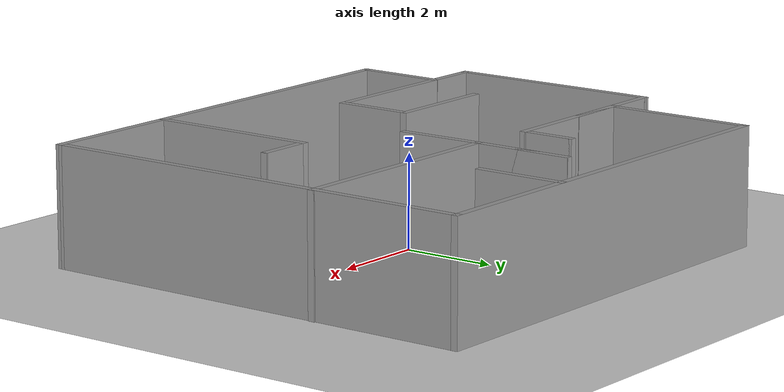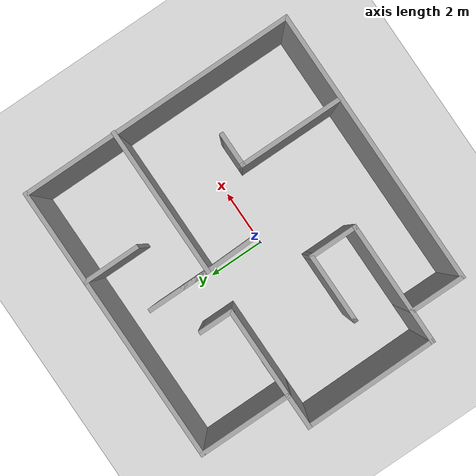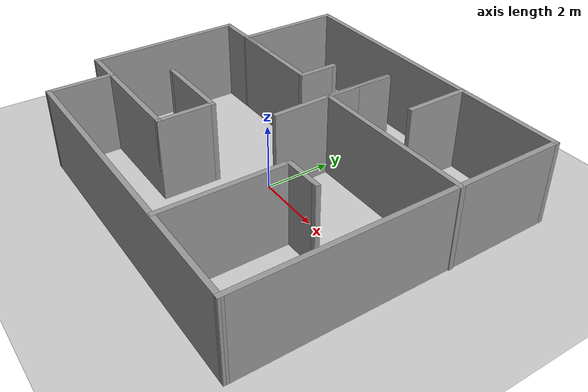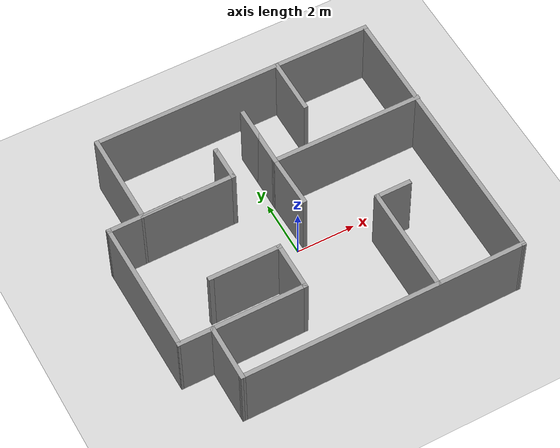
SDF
<sdf version="1.7">
 <world name="default">
  <light name="sun" type="directional">
   <pose>0 0 10 0 -0 0</pose>
   <diffuse>0.8 0.8 0.8 1</diffuse>
   <specular>0.2 0.2 0.2 1</specular>
   <attenuation>
    <range>1000</range>
    <constant>0.9</constant>
    <linear>0.01</linear>
    <quadratic>0.001</quadratic>
   </attenuation>
   <direction>-0.5 0.1 -0.9</direction>
   <spot><inner_angle>0</inner_angle><outer_angle>0</outer_angle><falloff>0</falloff></spot>
  </light>
  <model name="ground_plane">
   <static>1</static>
   <link name="link">
    <collision name="collision">
     <geometry><plane><normal>0 0 1</normal><size>100 100</size></plane></geometry>
     <surface>
      <contact><collide_bitmask>65535</collide_bitmask></contact>
      <friction><ode><mu>100</mu><mu2>50</mu2></ode></friction>
     </surface>
    </collision>
    <visual name="visual">
     <cast_shadows>0</cast_shadows>
     <geometry><plane><normal>0 0 1</normal><size>100 100</size></plane></geometry>
     <material>
      <script><uri>file://media/materials/scripts/gazebo.material</uri><name>Gazebo/Grey</name></script>
     </material>
    </visual>
   </link>
  </model>
  <gravity>0 0 -9.8</gravity>
  <magnetic_field>6e-06 2.3e-05 -4.2e-05</magnetic_field>
  <atmosphere type="adiabatic"/>
  <physics type="ode">
   <max_step_size>0.001</max_step_size>
   <real_time_factor>1</real_time_factor>
   <real_time_update_rate>1000</real_time_update_rate>
  </physics>
  <scene><ambient>0.4 0.4 0.4 1</ambient><background>0.7 0.7 0.7 1</background><shadows>1</shadows></scene>
  <spherical_coordinates>
   <surface_model>EARTH_WGS84</surface_model>
   <latitude_deg>0</latitude_deg>
   <longitude_deg>0</longitude_deg>
   <elevation>0</elevation>
   <heading_deg>0</heading_deg>
  </spherical_coordinates>
  <model name="wallss">
   <pose>-0.05802 0.334637 0 0 -0 0</pose>
   <link name="Wall_0">
    <collision name="Wall_0_Collision">
     <geometry><box><size>4.73188 0.15 2.5</size></box></geometry>
     <pose>0 0 1.25 0 -0 0</pose>
    </collision>
    <visual name="Wall_0_Visual">
     <pose>0 0 1.25 0 -0 0</pose>
     <geometry><box><size>4.73188 0.15 2.5</size></box></geometry>
     <material>
      <script><uri>file://media/materials/scripts/gazebo.material</uri><name>Gazebo/Grey</name></script>
      <ambient>1 1 1 1</ambient>
     </material>
     <meta><layer>0</layer></meta>
    </visual>
    <pose>-5.36203 -0.652776 0 0 -0 -1.56184</pose>
   </link>
   <link name="Wall_10">
    <collision name="Wall_10_Collision">
     <geometry><box><size>9.75 0.15 2.5</size></box></geometry>
     <pose>0 0 1.25 0 -0 0</pose>
    </collision>
    <visual name="Wall_10_Visual">
     <pose>0 0 1.25 0 -0 0</pose>
     <geometry><box><size>9.75 0.15 2.5</size></box></geometry>
     <material>
      <script><uri>file://media/materials/scripts/gazebo.material</uri><name>Gazebo/Grey</name></script>
      <ambient>1 1 1 1</ambient>
     </material>
     <meta><layer>0</layer></meta>
    </visual>
    <pose>0.556397 4.80896 0 0 -0 3.14159</pose>
   </link>
   <link name="Wall_12">
    <collision name="Wall_12_Collision">
     <geometry><box><size>1.4169 0.15 2.5</size></box></geometry>
     <pose>0 0 1.25 0 -0 0</pose>
    </collision>
    <visual name="Wall_12_Visual">
     <pose>0 0 1.25 0 -0 0</pose>
     <geometry><box><size>1.4169 0.15 2.5</size></box></geometry>
     <material>
      <script><uri>file://media/materials/scripts/gazebo.material</uri><name>Gazebo/Grey</name></script>
      <ambient>1 1 1 1</ambient>
     </material>
     <meta><layer>0</layer></meta>
    </visual>
    <pose>-3.6077 1.64665 0 0 -0 -3.13306</pose>
   </link>
   <link name="Wall_13">
    <collision name="Wall_13_Collision">
     <geometry><box><size>3.25 0.15 2.5</size></box></geometry>
     <pose>0 0 1.25 0 -0 0</pose>
    </collision>
    <visual name="Wall_13_Visual">
     <pose>0 0 1.25 0 -0 0</pose>
     <geometry><box><size>3.25 0.15 2.5</size></box></geometry>
     <material>
      <script><uri>file://media/materials/scripts/gazebo.material</uri><name>Gazebo/Grey</name></script>
      <ambient>1 1 1 1</ambient>
     </material>
     <meta><layer>0</layer></meta>
    </visual>
    <pose>-2.69113 1.64124 0 0 -0 0</pose>
   </link>
   <link name="Wall_14">
    <collision name="Wall_14_Collision">
     <geometry><box><size>1.25 0.15 2.5</size></box></geometry>
     <pose>0 0 1.25 0 -0 0</pose>
    </collision>
    <visual name="Wall_14_Visual">
     <pose>0 0 1.25 0 -0 0</pose>
     <geometry><box><size>1.25 0.15 2.5</size></box></geometry>
     <material>
      <script><uri>file://media/materials/scripts/gazebo.material</uri><name>Gazebo/Grey</name></script>
      <ambient>1 1 1 1</ambient>
     </material>
     <meta><layer>0</layer></meta>
    </visual>
    <pose>-1.14113 2.19124 0 0 -0 1.5708</pose>
   </link>
   <link name="Wall_15">
    <collision name="Wall_15_Collision">
     <geometry><box><size>0.15 0.15 2.5</size></box></geometry>
     <pose>0 0 1.25 0 -0 0</pose>
    </collision>
    <visual name="Wall_15_Visual">
     <pose>0 0 1.25 0 -0 0</pose>
     <geometry><box><size>0.15 0.15 2.5</size></box></geometry>
     <material>
      <script><uri>file://media/materials/scripts/gazebo.material</uri><name>Gazebo/Grey</name></script>
      <ambient>0 0 0 1</ambient>
     </material>
     <meta><layer>0</layer></meta>
    </visual>
    <pose>-1.14113 2.74124 0 0 -0 0</pose>
   </link>
   <link name="Wall_16">
    <collision name="Wall_16_Collision">
     <geometry><box><size>5.25 0.15 2.5</size></box></geometry>
     <pose>0 0 1.25 0 -0 0</pose>
    </collision>
    <visual name="Wall_16_Visual">
     <pose>0 0 1.25 0 -0 0</pose>
     <geometry><box><size>5.25 0.15 2.5</size></box></geometry>
     <material>
      <script><uri>file://media/materials/scripts/gazebo.material</uri><name>Gazebo/Grey</name></script>
      <ambient>1 1 1 1</ambient>
     </material>
     <meta><layer>0</layer></meta>
    </visual>
    <pose>2.83322 1.53175 0 0 -0 0</pose>
   </link>
   <link name="Wall_18">
    <collision name="Wall_18_Collision">
     <geometry><box><size>2 0.15 2.5</size></box></geometry>
     <pose>0 0 1.25 0 -0 0</pose>
    </collision>
    <visual name="Wall_18_Visual">
     <pose>0 0 1.25 0 -0 0</pose>
     <geometry><box><size>2 0.15 2.5</size></box></geometry>
     <material>
      <script><uri>file://media/materials/scripts/gazebo.material</uri><name>Gazebo/Grey</name></script>
      <ambient>1 1 1 1</ambient>
     </material>
     <meta><layer>0</layer></meta>
    </visual>
    <pose>2.11447 3.8704 0 0 -0 -1.5708</pose>
   </link>
   <link name="Wall_2">
    <collision name="Wall_2_Collision">
     <geometry><box><size>1.29154 0.15 2.5</size></box></geometry>
     <pose>0 0 1.25 0 -0 0</pose>
    </collision>
    <visual name="Wall_2_Visual">
     <pose>0 0 1.25 0 -0 0</pose>
     <geometry><box><size>1.29154 0.15 2.5</size></box></geometry>
     <material>
      <script><uri>file://media/materials/scripts/gazebo.material</uri><name>Gazebo/Grey</name></script>
      <ambient>1 1 1 1</ambient>
     </material>
     <meta><layer>0</layer></meta>
    </visual>
    <pose>-4.81184 1.63966 0 0 -0 0.002777</pose>
   </link>
   <link name="Wall_20">
    <collision name="Wall_20_Collision">
     <geometry><box><size>2.25 0.15 2.5</size></box></geometry>
     <pose>0 0 1.25 0 -0 0</pose>
    </collision>
    <visual name="Wall_20_Visual">
     <pose>0 0 1.25 0 -0 0</pose>
     <geometry><box><size>2.25 0.15 2.5</size></box></geometry>
     <material>
      <script><uri>file://media/materials/scripts/gazebo.material</uri><name>Gazebo/Grey</name></script>
      <ambient>1 1 1 1</ambient>
     </material>
     <meta><layer>0</layer></meta>
    </visual>
    <pose>0.283222 2.58175 0 0 -0 -1.5708</pose>
   </link>
   <link name="Wall_21">
    <collision name="Wall_21_Collision">
     <geometry><box><size>2.25 0.15 2.5</size></box></geometry>
     <pose>0 0 1.25 0 -0 0</pose>
    </collision>
    <visual name="Wall_21_Visual">
     <pose>0 0 1.25 0 -0 0</pose>
     <geometry><box><size>2.25 0.15 2.5</size></box></geometry>
     <material>
      <script><uri>file://media/materials/scripts/gazebo.material</uri><name>Gazebo/Grey</name></script>
      <ambient>1 1 1 1</ambient>
     </material>
     <meta><layer>0</layer></meta>
    </visual>
    <pose>0.283222 2.58175 0 0 -0 1.5708</pose>
   </link>
   <link name="Wall_24">
    <collision name="Wall_24_Collision">
     <geometry><box><size>3.25 0.15 2.5</size></box></geometry>
     <pose>0 0 1.25 0 -0 0</pose>
    </collision>
    <visual name="Wall_24_Visual">
     <pose>0 0 1.25 0 -0 0</pose>
     <geometry><box><size>3.25 0.15 2.5</size></box></geometry>
     <material>
      <script><uri>file://media/materials/scripts/gazebo.material</uri><name>Gazebo/Grey</name></script>
      <ambient>1 1 1 1</ambient>
     </material>
     <meta><layer>0</layer></meta>
    </visual>
    <pose>-2.68633 -2.95013 0 0 -0 0</pose>
   </link>
   <link name="Wall_25">
    <collision name="Wall_25_Collision">
     <geometry><box><size>1.75 0.15 2.5</size></box></geometry>
     <pose>0 0 1.25 0 -0 0</pose>
    </collision>
    <visual name="Wall_25_Visual">
     <pose>0 0 1.25 0 -0 0</pose>
     <geometry><box><size>1.75 0.15 2.5</size></box></geometry>
     <material>
      <script><uri>file://media/materials/scripts/gazebo.material</uri><name>Gazebo/Grey</name></script>
      <ambient>1 1 1 1</ambient>
     </material>
     <meta><layer>0</layer></meta>
    </visual>
    <pose>-1.13633 -2.15013 0 0 -0 1.5708</pose>
   </link>
   <link name="Wall_26">
    <collision name="Wall_26_Collision">
     <geometry><box><size>2.5 0.15 2.5</size></box></geometry>
     <pose>0 0 1.25 0 -0 0</pose>
    </collision>
    <visual name="Wall_26_Visual">
     <pose>0 0 1.25 0 -0 0</pose>
     <geometry><box><size>2.5 0.15 2.5</size></box></geometry>
     <material>
      <script><uri>file://media/materials/scripts/gazebo.material</uri><name>Gazebo/Grey</name></script>
      <ambient>1 1 1 1</ambient>
     </material>
     <meta><layer>0</layer></meta>
    </visual>
    <pose>-2.31133 -1.35013 0 0 -0 3.14159</pose>
   </link>
   <link name="Wall_27">
    <collision name="Wall_27_Collision">
     <geometry><box><size>0.16 0.15 2.5</size></box></geometry>
     <pose>0 0 1.25 0 -0 0</pose>
    </collision>
    <visual name="Wall_27_Visual">
     <pose>0 0 1.25 0 -0 0</pose>
     <geometry><box><size>0.16 0.15 2.5</size></box></geometry>
     <material>
      <script><uri>file://media/materials/scripts/gazebo.material</uri><name>Gazebo/Grey</name></script>
      <ambient>0 0 0 1</ambient>
     </material>
     <meta><layer>0</layer></meta>
    </visual>
    <pose>-3.48133 -1.35013 0 0 -0 0</pose>
   </link>
   <link name="Wall_28">
    <collision name="Wall_28_Collision">
     <geometry><box><size>3.75 0.15 2.5</size></box></geometry>
     <pose>0 0 1.25 0 -0 0</pose>
    </collision>
    <visual name="Wall_28_Visual">
     <pose>0 0 1.25 0 -0 0</pose>
     <geometry><box><size>3.75 0.15 2.5</size></box></geometry>
     <material>
      <script><uri>file://media/materials/scripts/gazebo.material</uri><name>Gazebo/Grey</name></script>
      <ambient>1 1 1 1</ambient>
     </material>
     <meta><layer>0</layer></meta>
    </visual>
    <pose>2.37284 -2.97685 0 0 -0 1.5708</pose>
   </link>
   <link name="Wall_29">
    <collision name="Wall_29_Collision">
     <geometry><box><size>1.25 0.15 2.5</size></box></geometry>
     <pose>0 0 1.25 0 -0 0</pose>
    </collision>
    <visual name="Wall_29_Visual">
     <pose>0 0 1.25 0 -0 0</pose>
     <geometry><box><size>1.25 0.15 2.5</size></box></geometry>
     <material>
      <script><uri>file://media/materials/scripts/gazebo.material</uri><name>Gazebo/Grey</name></script>
      <ambient>1 1 1 1</ambient>
     </material>
     <meta><layer>0</layer></meta>
    </visual>
    <pose>2.92284 -1.17685 0 0 -0 0</pose>
   </link>
   <link name="Wall_3">
    <collision name="Wall_3_Collision">
     <geometry><box><size>3.31524 0.15 2.5</size></box></geometry>
     <pose>0 0 1.25 0 -0 0</pose>
    </collision>
    <visual name="Wall_3_Visual">
     <pose>0 0 1.25 0 -0 0</pose>
     <geometry><box><size>3.31524 0.15 2.5</size></box></geometry>
     <material>
      <script><uri>file://media/materials/scripts/gazebo.material</uri><name>Gazebo/Grey</name></script>
      <ambient>1 1 1 1</ambient>
     </material>
     <meta><layer>0</layer></meta>
    </visual>
    <pose>-4.2436 3.22386 0 0 -0 1.57236</pose>
   </link>
   <link name="Wall_30">
    <collision name="Wall_30_Collision">
     <geometry><box><size>0.16 0.15 2.5</size></box></geometry>
     <pose>0 0 1.25 0 -0 0</pose>
    </collision>
    <visual name="Wall_30_Visual">
     <pose>0 0 1.25 0 -0 0</pose>
     <geometry><box><size>0.16 0.15 2.5</size></box></geometry>
     <material>
      <script><uri>file://media/materials/scripts/gazebo.material</uri><name>Gazebo/Grey</name></script>
      <ambient>0 0 0 1</ambient>
     </material>
     <meta><layer>0</layer></meta>
    </visual>
    <pose>3.47784 -1.17685 0 0 -0 0</pose>
   </link>
   <link name="Wall_31">
    <collision name="Wall_31_Collision">
     <geometry><box><size>1.90911 0.15 2.5</size></box></geometry>
     <pose>0 0 1.25 0 -0 0</pose>
    </collision>
    <visual name="Wall_31_Visual">
     <pose>0 0 1.25 0 -0 0</pose>
     <geometry><box><size>1.90911 0.15 2.5</size></box></geometry>
     <material>
      <script><uri>file://media/materials/scripts/gazebo.material</uri><name>Gazebo/Grey</name></script>
      <ambient>1 1 1 1</ambient>
     </material>
     <meta><layer>0</layer></meta>
    </visual>
    <pose>0.306092 0.652494 0 0 -0 -1.54479</pose>
   </link>
   <link name="Wall_6">
    <collision name="Wall_6_Collision">
     <geometry><box><size>1.25519 0.15 2.5</size></box></geometry>
     <pose>0 0 1.25 0 -0 0</pose>
    </collision>
    <visual name="Wall_6_Visual">
     <pose>0 0 1.25 0 -0 0</pose>
     <geometry><box><size>1.25519 0.15 2.5</size></box></geometry>
     <material>
      <script><uri>file://media/materials/scripts/gazebo.material</uri><name>Gazebo/Grey</name></script>
      <ambient>1 1 1 1</ambient>
     </material>
     <meta><layer>0</layer></meta>
    </visual>
    <pose>-4.78892 -2.94687 0 0 -0 -0.005882</pose>
   </link>
   <link name="Wall_7">
    <collision name="Wall_7_Collision">
     <geometry><box><size>2.00865 0.15 2.5</size></box></geometry>
     <pose>0 0 1.25 0 -0 0</pose>
    </collision>
    <visual name="Wall_7_Visual">
     <pose>0 0 1.25 0 -0 0</pose>
     <geometry><box><size>2.00865 0.15 2.5</size></box></geometry>
     <material>
      <script><uri>file://media/materials/scripts/gazebo.material</uri><name>Gazebo/Grey</name></script>
      <ambient>1 1 1 1</ambient>
     </material>
     <meta><layer>0</layer></meta>
    </visual>
    <pose>-4.23873 -3.87944 0 0 -0 -1.57338</pose>
   </link>
   <link name="Wall_8">
    <collision name="Wall_8_Collision">
     <geometry><box><size>9.75 0.15 2.5</size></box></geometry>
     <pose>0 0 1.25 0 -0 0</pose>
    </collision>
    <visual name="Wall_8_Visual">
     <pose>0 0 1.25 0 -0 0</pose>
     <geometry><box><size>9.75 0.15 2.5</size></box></geometry>
     <material>
      <script><uri>file://media/materials/scripts/gazebo.material</uri><name>Gazebo/Grey</name></script>
      <ambient>1 1 1 1</ambient>
     </material>
     <meta><layer>0</layer></meta>
    </visual>
    <pose>0.558869 -4.80876 0 0 -0 0</pose>
   </link>
   <link name="Wall_9">
    <collision name="Wall_9_Collision">
     <geometry><box><size>9.76524 0.15 2.5</size></box></geometry>
     <pose>0 0 1.25 0 -0 0</pose>
    </collision>
    <visual name="Wall_9_Visual">
     <pose>0 0 1.25 0 -0 0</pose>
     <geometry><box><size>9.76524 0.15 2.5</size></box></geometry>
     <material>
      <script><uri>file://media/materials/scripts/gazebo.material</uri><name>Gazebo/Grey</name></script>
      <ambient>1 1 1 1</ambient>
     </material>
     <meta><layer>0</layer></meta>
    </visual>
    <pose>5.3564 -0.001136 0 0 -0 1.57131</pose>
   </link>
   <static>1</static>
  </model>
 </world>
</sdf>
